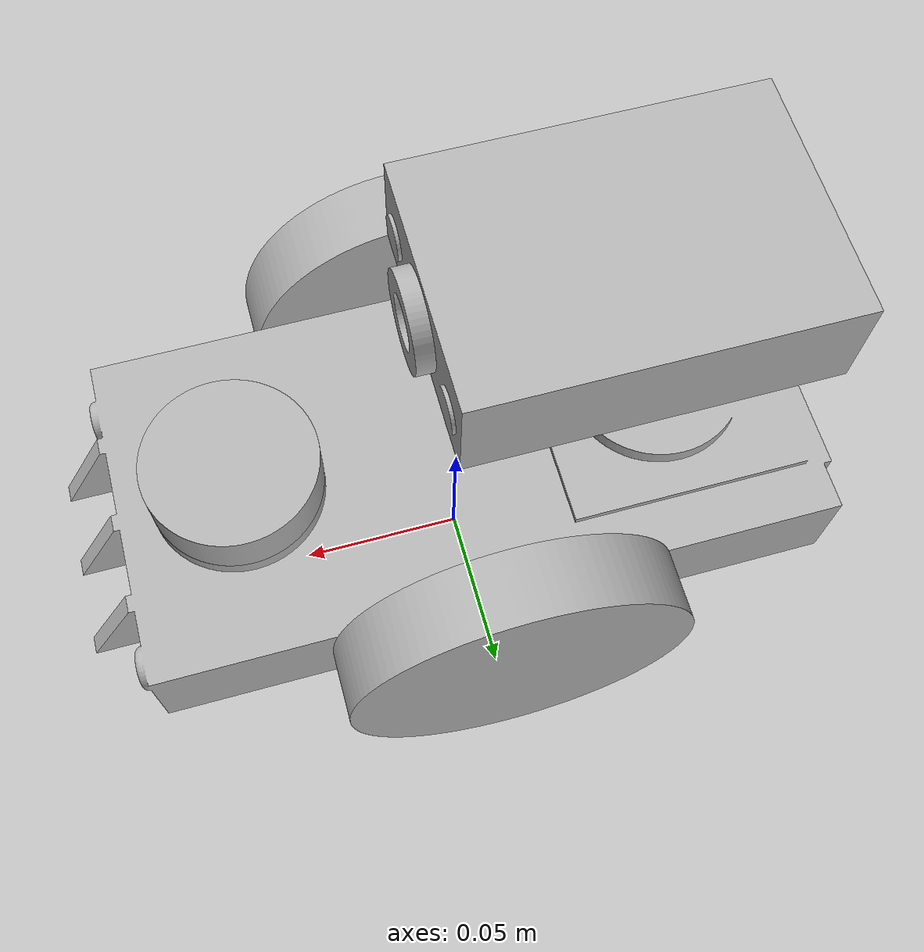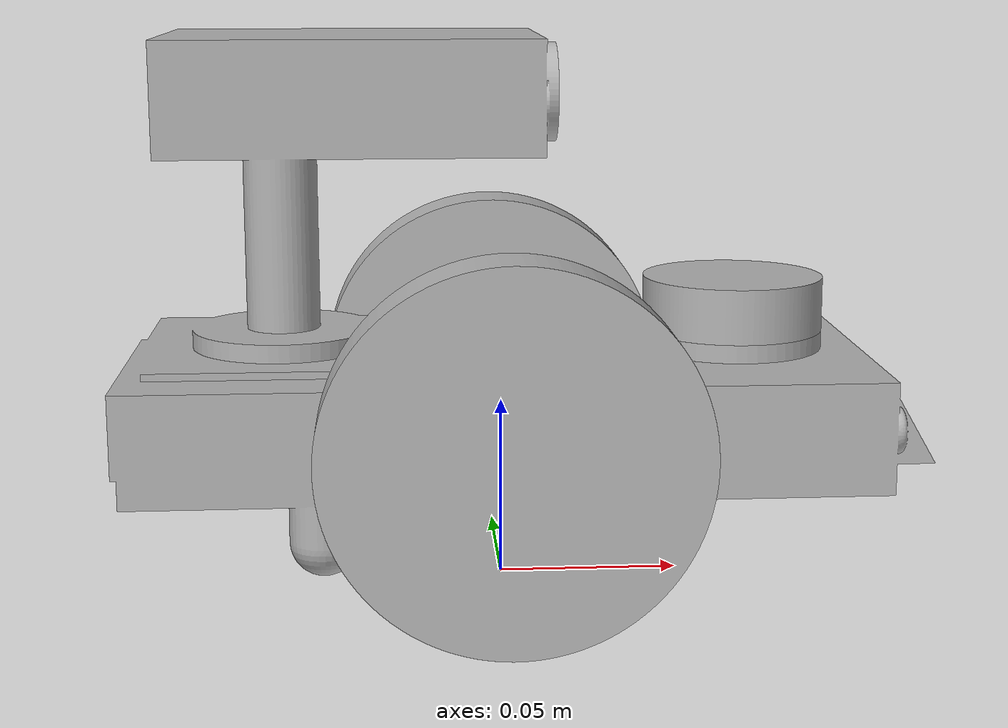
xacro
<?xml version="1.0" ?>
<robot name="frp_1100309" xmlns:xacro="http://www.ros.org/wiki/xacro">

<xacro:include filename="$(find frp_1100309_description)/urdf/materials.xacro" />
<xacro:include filename="$(find frp_1100309_description)/urdf/frp_1100309.trans" />
<xacro:include filename="$(find frp_1100309_description)/urdf/frp_1100309.gazebo" />
<link name="base_link">
  <inertial>
    <origin xyz="-0.0011790878531785184 -1.0394837279456578e-06 0.04969287568660501" rpy="0 0 0"/>
    <mass value="5.220613061770951"/>
    <inertia ixx="0.004637" iyy="0.01865" izz="0.022072" ixy="1e-06" iyz="0.0" ixz="6.1e-05"/>
  </inertial>
  <visual>
    <origin xyz="0 0 0" rpy="0 0 0"/>
    <geometry>
      <mesh filename="package://frp_1100309_description/meshes/base_link.stl" scale="0.001 0.001 0.001"/>
    </geometry>
    <material name="silver"/>
  </visual>
  <collision>
    <origin xyz="0 0 0" rpy="0 0 0"/>
    <geometry>
      <mesh filename="package://frp_1100309_description/meshes/base_link.stl" scale="0.001 0.001 0.001"/>
    </geometry>
  </collision>
</link>

<link name="right_wheel_1">
  <inertial>
    <origin xyz="-7.237528875152536e-18 -0.009999999999999995 -1.3877787807814457e-17" rpy="0 0 0"/>
    <mass value="0.14608405839192537"/>
    <inertia ixx="9.6e-05" iyy="0.000183" izz="9.6e-05" ixy="-0.0" iyz="0.0" ixz="-0.0"/>
  </inertial>
  <visual>
    <origin xyz="-0.0 0.05 -0.05" rpy="0 0 0"/>
    <geometry>
      <mesh filename="package://frp_1100309_description/meshes/right_wheel_1.stl" scale="0.001 0.001 0.001"/>
    </geometry>
    <material name="silver"/>
  </visual>
  <collision>
    <origin xyz="-0.0 0.05 -0.05" rpy="0 0 0"/>
    <geometry>
      <mesh filename="package://frp_1100309_description/meshes/right_wheel_1.stl" scale="0.001 0.001 0.001"/>
    </geometry>
  </collision>
</link>

<link name="left_wheel_1">
  <inertial>
    <origin xyz="-7.237528875152536e-18 0.009999999999999995 -1.3877787807814457e-17" rpy="0 0 0"/>
    <mass value="0.14608405839192537"/>
    <inertia ixx="9.6e-05" iyy="0.000183" izz="9.6e-05" ixy="0.0" iyz="-0.0" ixz="-0.0"/>
  </inertial>
  <visual>
    <origin xyz="-0.0 -0.05 -0.05" rpy="0 0 0"/>
    <geometry>
      <mesh filename="package://frp_1100309_description/meshes/left_wheel_1.stl" scale="0.001 0.001 0.001"/>
    </geometry>
    <material name="silver"/>
  </visual>
  <collision>
    <origin xyz="-0.0 -0.05 -0.05" rpy="0 0 0"/>
    <geometry>
      <mesh filename="package://frp_1100309_description/meshes/left_wheel_1.stl" scale="0.001 0.001 0.001"/>
    </geometry>
  </collision>
</link>

<link name="lidar_1">
  <inertial>
    <origin xyz="0.0 4.825019250101687e-18 0.007499999999999993" rpy="0 0 0"/>
    <mass value="0.23120158435012397"/>
    <inertia ixx="4e-05" iyy="4e-05" izz="7.2e-05" ixy="-0.0" iyz="-0.0" ixz="0.0"/>
  </inertial>
  <visual>
    <origin xyz="-0.065 -0.0 -0.07" rpy="0 0 0"/>
    <geometry>
      <mesh filename="package://frp_1100309_description/meshes/lidar_1.stl" scale="0.001 0.001 0.001"/>
    </geometry>
    <material name="silver"/>
  </visual>
  <collision>
    <origin xyz="-0.065 -0.0 -0.07" rpy="0 0 0"/>
    <geometry>
      <mesh filename="package://frp_1100309_description/meshes/lidar_1.stl" scale="0.001 0.001 0.001"/>
    </geometry>
  </collision>
</link>

<link name="camera_1">
  <inertial>
    <origin xyz="0.01920792959317702 7.649951285945566e-15 0.06223742272253836" rpy="0 0 0"/>
    <mass value="1.7918943053017389"/>
    <inertia ixx="0.001012" iyy="0.001814" izz="0.002158" ixy="-0.0" iyz="-0.0" ixz="-9.4e-05"/>
  </inertial>
  <visual>
    <origin xyz="0.06 -0.0 -0.072" rpy="0 0 0"/>
    <geometry>
      <mesh filename="package://frp_1100309_description/meshes/camera_1.stl" scale="0.001 0.001 0.001"/>
    </geometry>
    <material name="silver"/>
  </visual>
  <collision>
    <origin xyz="0.06 -0.0 -0.072" rpy="0 0 0"/>
    <geometry>
      <mesh filename="package://frp_1100309_description/meshes/camera_1.stl" scale="0.001 0.001 0.001"/>
    </geometry>
  </collision>
</link>

<joint name="Revolute 12" type="continuous">
  <origin xyz="0.0 -0.05 0.05" rpy="0 0 0"/>
  <parent link="base_link"/>
  <child link="right_wheel_1"/>
  <axis xyz="0.0 1.0 0.0"/>
</joint>

<joint name="Revolute 13" type="continuous">
  <origin xyz="0.0 0.05 0.05" rpy="0 0 0"/>
  <parent link="base_link"/>
  <child link="left_wheel_1"/>
  <axis xyz="0.0 1.0 0.0"/>
</joint>

<joint name="Rigid 14" type="fixed">
  <origin xyz="0.065 0.0 0.07" rpy="0 0 0"/>
  <parent link="base_link"/>
  <child link="lidar_1"/>
</joint>

<joint name="Rigid 15" type="fixed">
  <origin xyz="-0.06 0.0 0.072" rpy="0 0 0"/>
  <parent link="base_link"/>
  <child link="camera_1"/>
</joint>

</robot>

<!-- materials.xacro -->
<robot name="frp_1100309" xmlns:xacro="http://www.ros.org/wiki/xacro" >

<material name="silver">
  <color rgba="0.700 0.700 0.700 1.000"/>
</material>

</robot>

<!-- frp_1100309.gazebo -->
<robot name="frp_1100309" xmlns:xacro="http://www.ros.org/wiki/xacro" >

<xacro:property name="body_color" value="Gazebo/Silver" />

<gazebo>
  <plugin name="control" filename="libgazebo_ros_control.so"/>
</gazebo>
<gazebo reference="base_link">
  <material>${body_color}</material>
  <mu1>0.2</mu1>
  <mu2>0.2</mu2>
  <selfCollide>true</selfCollide>
  <gravity>true</gravity>
</gazebo>

<gazebo reference="right_wheel_1">
  <material>${body_color}</material>
  <mu1>1500</mu1>
  <mu2>1500</mu2>
  <selfCollide>true</selfCollide>
</gazebo>

<gazebo reference="left_wheel_1">
  <material>${body_color}</material>
  <mu1>1500</mu1>
  <mu2>1500</mu2>
  <selfCollide>true</selfCollide>
</gazebo>

<gazebo reference="lidar_1">
  <material>${body_color}</material>
  <mu1>0.1</mu1>
  <mu2>0.1</mu2>
  <selfCollide>true</selfCollide>
</gazebo>

<gazebo reference="camera_1">
  <material>${body_color}</material>
  <mu1>0.2</mu1>
  <mu2>0.2</mu2>
  <selfCollide>true</selfCollide>
</gazebo>

<gazebo>
  <plugin name="differential_drive_controller" filename="libgazebo_ros_diff_drive.so">

    <!-- Plugin update rate in Hz -->
    <updateRate>100</updateRate>

    <!-- Name of left joint, defaults to `left_joint` -->
    <leftJoint>Revolute 13</leftJoint>

    <!-- Name of right joint, defaults to `right_joint` -->
    <rightJoint>Revolute 12</rightJoint>

    <!-- The distance from the center of one wheel to the other, in meters, defaults to 0.34 m -->
    <wheelSeparation>0.1</wheelSeparation>

    <!-- Diameter of the wheels, in meters, defaults to 0.15 m -->
    <wheelDiameter>0.1</wheelDiameter>

    <!-- Wheel acceleration, in rad/s^2, defaults to 0.0 rad/s^2 -->
    <wheelAcceleration>1.0</wheelAcceleration>

    <!-- Maximum torque which the wheels can produce, in Nm, defaults to 5 Nm -->
    <wheelTorque>70</wheelTorque>

    <!-- Topic to receive geometry_msgs/Twist message commands, defaults to `cmd_vel` -->
    <commandTopic>cmd_vel</commandTopic>

    <!-- Topic to publish nav_msgs/Odometry messages, defaults to `odom` -->
    <odometryTopic>odom</odometryTopic>

    <!-- Odometry frame, defaults to `odom` -->
    <odometryFrame>odom</odometryFrame>

    <!-- Robot frame to calculate odometry from, defaults to `base_footprint` -->
    <robotBaseFrame>base_link</robotBaseFrame>

    <!-- Odometry source, 0 for ENCODER, 1 for WORLD, defaults to WORLD -->
    <odometrySource>1</odometrySource>

    <!-- Set to true to publish transforms for the wheel links, defaults to false -->
    <publishWheelTF>true</publishWheelTF>

    <!-- Set to true to publish transforms for the odometry, defaults to true -->
    <publishOdom>true</publishOdom>

    <!-- Set to true to publish sensor_msgs/JointState on /joint_states for the wheel joints, defaults to false -->
    <publishWheelJointState>true</publishWheelJointState>

    <!-- Set to true to swap right and left wheels, defaults to true -->
    <legacyMode>false</legacyMode>
  </plugin>
</gazebo>

<!-- hokuyo -->
<gazebo reference="lidar_1">
  <sensor type="ray" name="head_hokuyo_sensor">
    <pose>0 0 0 0 0 0</pose>
    <visualize>true</visualize>
    <update_rate>40</update_rate>
    <ray>
      <scan>
        <horizontal>
          <samples>720</samples> <!-- 減少樣本數，適應較小的掃描範圍 -->
          <resolution>1</resolution>
          <min_angle>-1.570796</min_angle>
          <max_angle>1.570796</max_angle>
        </horizontal>
      </scan>
      <range>
        <min>0.10</min>
        <max>30.0</max>
        <resolution>0.01</resolution>
      </range>
      <noise>
        <type>gaussian</type>
        <mean>0.0</mean>
        <stddev>0.01</stddev>
      </noise>
    </ray>
    <plugin name="gazebo_ros_head_hokuyo_controller" filename="libgazebo_ros_laser.so">
      <topicName>/scan</topicName>
      <frameName>lidar_1</frameName>
    </plugin>
  </sensor>
</gazebo>

<!-- camera -->
  <gazebo reference="camera_1">
    <sensor type="camera" name="camera1">
      <update_rate>30.0</update_rate>
      <camera name="head">
        <horizontal_fov>1.3962634</horizontal_fov>
        <image>
          <width>800</width>
          <height>800</height>
          <format>R8G8B8</format>
        </image>
        <clip>
          <near>0.02</near>
          <far>300</far>
        </clip>
        <noise>
          <type>gaussian</type>
          <!-- Noise is sampled independently per pixel on each frame.
               That pixel's noise value is added to each of its color
               channels, which at that point lie in the range [0,1]. -->
          <mean>0.0</mean>
          <stddev>0.007</stddev>
        </noise>
      </camera>
      <plugin name="camera_controller" filename="libgazebo_ros_camera.so">
        <alwaysOn>true</alwaysOn>
        <updateRate>0.0</updateRate>
        <cameraName>/camera</cameraName>
        <imageTopicName>image_raw</imageTopicName>
        <cameraInfoTopicName>camera_info</cameraInfoTopicName>
        <frameName>camera_1</frameName>
        <hackBaseline>0.07</hackBaseline>
        <distortionK1>0.0</distortionK1>
        <distortionK2>0.0</distortionK2>
        <distortionK3>0.0</distortionK3>
        <distortionT1>0.0</distortionT1>
        <distortionT2>0.0</distortionT2>
      </plugin>
    </sensor>
  </gazebo>

</robot>
